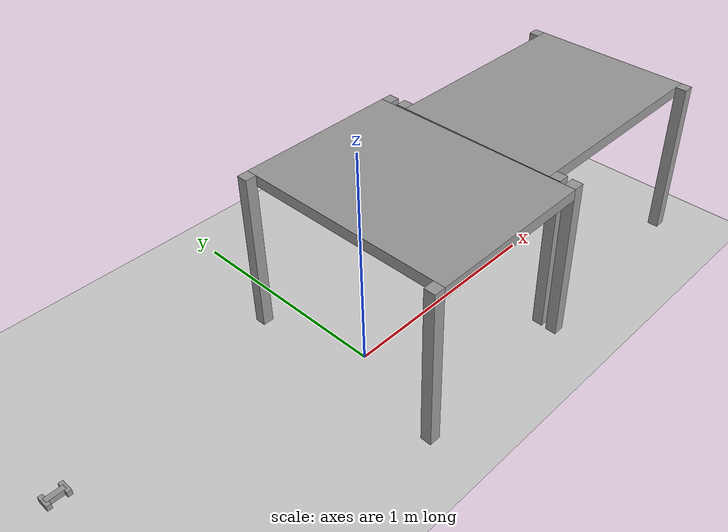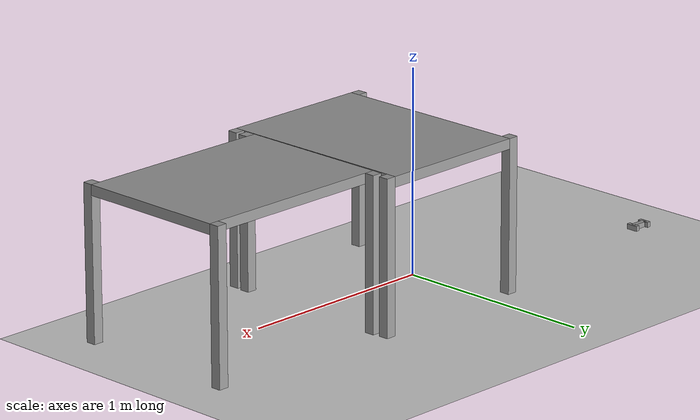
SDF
<sdf version="1.6">
 <world name="default">
  <model name="ground_plane">
   <pose>0 1 0 0 -0 0</pose>
   <static>1</static>
   <link name="link">
    <collision name="collision">
     <geometry><plane><normal>0 0 1</normal><size>100 100</size></plane></geometry>
     <surface>
      <contact><collide_bitmask>65535</collide_bitmask></contact>
      <friction><ode><mu>100</mu><mu2>50</mu2></ode></friction>
     </surface>
    </collision>
    <visual name="visual">
     <cast_shadows>0</cast_shadows>
     <geometry><plane><normal>0 0 1</normal><size>100 100</size></plane></geometry>
     <material>
      <script><uri>file://media/materials/scripts/gazebo.material</uri><name>Gazebo/Grey</name></script>
     </material>
    </visual>
   </link>
  </model>
  <model name="table">
   <link name="link_0">
    <inertial>
     <mass>1</mass>
     <inertia>
      <ixx>0.166667</ixx>
      <ixy>0</ixy>
      <ixz>0</ixz>
      <iyy>0.166667</iyy>
      <iyz>0</iyz>
      <izz>0.166667</izz>
     </inertia>
    </inertial>
    <visual name="visual">
     <geometry><box><size>0.75 1 0.05</size></box></geometry>
     <material>
      <lighting>1</lighting>
      <script><uri>file://media/materials/scripts/gazebo.material</uri><name>Gazebo/Grey</name></script>
      <shader type="vertex"><normal_map>__default__</normal_map></shader>
      <ambient>0.3 0.3 0.3 1</ambient>
      <diffuse>0.7 0.7 0.7 1</diffuse>
      <specular>0.01 0.01 0.01 1</specular>
      <emissive>0 0 0 1</emissive>
     </material>
    </visual>
    <collision name="collision">
     <geometry><box><size>0.75 1 0.05</size></box></geometry>
     <surface>
      <friction>
       <ode><mu>1</mu><mu2>1</mu2><fdir1>0 0 0</fdir1><slip1>0</slip1><slip2>0</slip2></ode>
       <torsional>
        <coefficient>1</coefficient>
        <patch_radius>0</patch_radius>
        <surface_radius>0</surface_radius>
        <use_patch_radius>1</use_patch_radius>
        <ode><slip>0</slip></ode>
       </torsional>
      </friction>
      <bounce><restitution_coefficient>0</restitution_coefficient><threshold>1e+06</threshold></bounce>
      <contact>
       <collide_without_contact>0</collide_without_contact>
       <collide_without_contact_bitmask>1</collide_without_contact_bitmask>
       <collide_bitmask>1</collide_bitmask>
       <ode>
        <soft_cfm>0</soft_cfm>
        <soft_erp>0.2</soft_erp>
        <kp>1e+13</kp>
        <kd>1</kd>
        <max_vel>0.01</max_vel>
        <min_depth>0</min_depth>
       </ode>
       <bullet>
        <split_impulse>1</split_impulse>
        <split_impulse_penetration_threshold>-0.01</split_impulse_penetration_threshold>
        <soft_cfm>0</soft_cfm>
        <soft_erp>0.2</soft_erp>
        <kp>1e+13</kp>
        <kd>1</kd>
       </bullet>
      </contact>
     </surface>
    </collision>
   </link>
   <link name="link_2_clone">
    <inertial>
     <mass>1</mass>
     <inertia>
      <ixx>0.166667</ixx>
      <ixy>0</ixy>
      <ixz>0</ixz>
      <iyy>0.166667</iyy>
      <iyz>0</iyz>
      <izz>0.166667</izz>
     </inertia>
    </inertial>
    <pose>-0.4 -0.475 -0.35 0 -0 0</pose>
    <visual name="visual">
     <geometry><box><size>0.05 0.05 0.75</size></box></geometry>
     <material>
      <lighting>1</lighting>
      <script><uri>file://media/materials/scripts/gazebo.material</uri><name>Gazebo/Grey</name></script>
      <shader type="vertex"><normal_map>__default__</normal_map></shader>
      <ambient>0.3 0.3 0.3 1</ambient>
      <diffuse>0.7 0.7 0.7 1</diffuse>
      <specular>0.01 0.01 0.01 1</specular>
      <emissive>0 0 0 1</emissive>
     </material>
    </visual>
    <collision name="collision">
     <geometry><box><size>0.05 0.05 0.75</size></box></geometry>
     <surface>
      <friction>
       <ode><mu>1</mu><mu2>1</mu2><fdir1>0 0 0</fdir1><slip1>0</slip1><slip2>0</slip2></ode>
       <torsional>
        <coefficient>1</coefficient>
        <patch_radius>0</patch_radius>
        <surface_radius>0</surface_radius>
        <use_patch_radius>1</use_patch_radius>
        <ode><slip>0</slip></ode>
       </torsional>
      </friction>
      <bounce><restitution_coefficient>0</restitution_coefficient><threshold>1e+06</threshold></bounce>
      <contact>
       <collide_without_contact>0</collide_without_contact>
       <collide_without_contact_bitmask>1</collide_without_contact_bitmask>
       <collide_bitmask>1</collide_bitmask>
       <ode>
        <soft_cfm>0</soft_cfm>
        <soft_erp>0.2</soft_erp>
        <kp>1e+13</kp>
        <kd>1</kd>
        <max_vel>0.01</max_vel>
        <min_depth>0</min_depth>
       </ode>
       <bullet>
        <split_impulse>1</split_impulse>
        <split_impulse_penetration_threshold>-0.01</split_impulse_penetration_threshold>
        <soft_cfm>0</soft_cfm>
        <soft_erp>0.2</soft_erp>
        <kp>1e+13</kp>
        <kd>1</kd>
       </bullet>
      </contact>
     </surface>
    </collision>
   </link>
   <link name="link_2_clone_0">
    <inertial>
     <mass>1</mass>
     <inertia>
      <ixx>0.166667</ixx>
      <ixy>0</ixy>
      <ixz>0</ixz>
      <iyy>0.166667</iyy>
      <iyz>0</iyz>
      <izz>0.166667</izz>
     </inertia>
    </inertial>
    <pose>0.4 -0.475 -0.35 0 -0 0</pose>
    <visual name="visual">
     <geometry><box><size>0.05 0.05 0.75</size></box></geometry>
     <material>
      <lighting>1</lighting>
      <script><uri>file://media/materials/scripts/gazebo.material</uri><name>Gazebo/Grey</name></script>
      <shader type="vertex"><normal_map>__default__</normal_map></shader>
      <ambient>0.3 0.3 0.3 1</ambient>
      <diffuse>0.7 0.7 0.7 1</diffuse>
      <specular>0.01 0.01 0.01 1</specular>
      <emissive>0 0 0 1</emissive>
     </material>
    </visual>
    <collision name="collision">
     <geometry><box><size>0.05 0.05 0.75</size></box></geometry>
     <surface>
      <friction>
       <ode><mu>1</mu><mu2>1</mu2><fdir1>0 0 0</fdir1><slip1>0</slip1><slip2>0</slip2></ode>
       <torsional>
        <coefficient>1</coefficient>
        <patch_radius>0</patch_radius>
        <surface_radius>0</surface_radius>
        <use_patch_radius>1</use_patch_radius>
        <ode><slip>0</slip></ode>
       </torsional>
      </friction>
      <bounce><restitution_coefficient>0</restitution_coefficient><threshold>1e+06</threshold></bounce>
      <contact>
       <collide_without_contact>0</collide_without_contact>
       <collide_without_contact_bitmask>1</collide_without_contact_bitmask>
       <collide_bitmask>1</collide_bitmask>
       <ode>
        <soft_cfm>0</soft_cfm>
        <soft_erp>0.2</soft_erp>
        <kp>1e+13</kp>
        <kd>1</kd>
        <max_vel>0.01</max_vel>
        <min_depth>0</min_depth>
       </ode>
       <bullet>
        <split_impulse>1</split_impulse>
        <split_impulse_penetration_threshold>-0.01</split_impulse_penetration_threshold>
        <soft_cfm>0</soft_cfm>
        <soft_erp>0.2</soft_erp>
        <kp>1e+13</kp>
        <kd>1</kd>
       </bullet>
      </contact>
     </surface>
    </collision>
   </link>
   <link name="link_2_clone_1">
    <inertial>
     <mass>1</mass>
     <inertia>
      <ixx>0.166667</ixx>
      <ixy>0</ixy>
      <ixz>0</ixz>
      <iyy>0.166667</iyy>
      <iyz>0</iyz>
      <izz>0.166667</izz>
     </inertia>
    </inertial>
    <pose>0.4 0.475 -0.35 0 -0 0</pose>
    <visual name="visual">
     <geometry><box><size>0.05 0.05 0.75</size></box></geometry>
     <material>
      <lighting>1</lighting>
      <script><uri>file://media/materials/scripts/gazebo.material</uri><name>Gazebo/Grey</name></script>
      <shader type="vertex"><normal_map>__default__</normal_map></shader>
      <ambient>0.3 0.3 0.3 1</ambient>
      <diffuse>0.7 0.7 0.7 1</diffuse>
      <specular>0.01 0.01 0.01 1</specular>
      <emissive>0 0 0 1</emissive>
     </material>
    </visual>
    <collision name="collision">
     <geometry><box><size>0.05 0.05 0.75</size></box></geometry>
     <surface>
      <friction>
       <ode><mu>1</mu><mu2>1</mu2><fdir1>0 0 0</fdir1><slip1>0</slip1><slip2>0</slip2></ode>
       <torsional>
        <coefficient>1</coefficient>
        <patch_radius>0</patch_radius>
        <surface_radius>0</surface_radius>
        <use_patch_radius>1</use_patch_radius>
        <ode><slip>0</slip></ode>
       </torsional>
      </friction>
      <bounce><restitution_coefficient>0</restitution_coefficient><threshold>1e+06</threshold></bounce>
      <contact>
       <collide_without_contact>0</collide_without_contact>
       <collide_without_contact_bitmask>1</collide_without_contact_bitmask>
       <collide_bitmask>1</collide_bitmask>
       <ode>
        <soft_cfm>0</soft_cfm>
        <soft_erp>0.2</soft_erp>
        <kp>1e+13</kp>
        <kd>1</kd>
        <max_vel>0.01</max_vel>
        <min_depth>0</min_depth>
       </ode>
       <bullet>
        <split_impulse>1</split_impulse>
        <split_impulse_penetration_threshold>-0.01</split_impulse_penetration_threshold>
        <soft_cfm>0</soft_cfm>
        <soft_erp>0.2</soft_erp>
        <kp>1e+13</kp>
        <kd>1</kd>
       </bullet>
      </contact>
     </surface>
    </collision>
   </link>
   <link name="link_2_clone_1_clone">
    <inertial>
     <mass>1</mass>
     <inertia>
      <ixx>0.166667</ixx>
      <ixy>0</ixy>
      <ixz>0</ixz>
      <iyy>0.166667</iyy>
      <iyz>0</iyz>
      <izz>0.166667</izz>
     </inertia>
    </inertial>
    <pose>-0.4 0.475 -0.35 0 -0 0</pose>
    <visual name="visual">
     <geometry><box><size>0.05 0.05 0.75</size></box></geometry>
     <material>
      <lighting>1</lighting>
      <script><uri>file://media/materials/scripts/gazebo.material</uri><name>Gazebo/Grey</name></script>
      <shader type="vertex"><normal_map>__default__</normal_map></shader>
      <ambient>0.3 0.3 0.3 1</ambient>
      <diffuse>0.7 0.7 0.7 1</diffuse>
      <specular>0.01 0.01 0.01 1</specular>
      <emissive>0 0 0 1</emissive>
     </material>
    </visual>
    <collision name="collision">
     <geometry><box><size>0.05 0.05 0.75</size></box></geometry>
     <surface>
      <friction>
       <ode><mu>1</mu><mu2>1</mu2><fdir1>0 0 0</fdir1><slip1>0</slip1><slip2>0</slip2></ode>
       <torsional>
        <coefficient>1</coefficient>
        <patch_radius>0</patch_radius>
        <surface_radius>0</surface_radius>
        <use_patch_radius>1</use_patch_radius>
        <ode><slip>0</slip></ode>
       </torsional>
      </friction>
      <bounce><restitution_coefficient>0</restitution_coefficient><threshold>1e+06</threshold></bounce>
      <contact>
       <collide_without_contact>0</collide_without_contact>
       <collide_without_contact_bitmask>1</collide_without_contact_bitmask>
       <collide_bitmask>1</collide_bitmask>
       <ode>
        <soft_cfm>0</soft_cfm>
        <soft_erp>0.2</soft_erp>
        <kp>1e+13</kp>
        <kd>1</kd>
        <max_vel>0.01</max_vel>
        <min_depth>0</min_depth>
       </ode>
       <bullet>
        <split_impulse>1</split_impulse>
        <split_impulse_penetration_threshold>-0.01</split_impulse_penetration_threshold>
        <soft_cfm>0</soft_cfm>
        <soft_erp>0.2</soft_erp>
        <kp>1e+13</kp>
        <kd>1</kd>
       </bullet>
      </contact>
     </surface>
    </collision>
   </link>
   <joint name="link_0_JOINT_2" type="fixed">
    <parent>link_0</parent>
    <child>link_2_clone</child>
    <physics>
     <ode><limit><cfm>0</cfm><erp>0.2</erp></limit><suspension><cfm>0</cfm><erp>0.2</erp></suspension></ode>
    </physics>
   </joint>
   <joint name="link_0_JOINT_3" type="fixed">
    <parent>link_0</parent>
    <child>link_2_clone_0</child>
    <physics>
     <ode><limit><cfm>0</cfm><erp>0.2</erp></limit><suspension><cfm>0</cfm><erp>0.2</erp></suspension></ode>
    </physics>
   </joint>
   <joint name="link_0_JOINT_4" type="fixed">
    <parent>link_0</parent>
    <child>link_2_clone_1</child>
    <physics>
     <ode><limit><cfm>0</cfm><erp>0.2</erp></limit><suspension><cfm>0</cfm><erp>0.2</erp></suspension></ode>
    </physics>
   </joint>
   <joint name="link_0_JOINT_6" type="fixed">
    <parent>link_0</parent>
    <child>link_2_clone_1_clone</child>
    <physics>
     <ode><limit><cfm>0</cfm><erp>0.2</erp></limit><suspension><cfm>0</cfm><erp>0.2</erp></suspension></ode>
    </physics>
   </joint>
   <static>1</static>
   <pose>0.268534 0.000932 0.724998 0 2e-06 0.005571</pose>
  </model>
  <model name="table_0">
   <link name="link_0">
    <inertial>
     <mass>1</mass>
     <inertia>
      <ixx>0.166667</ixx>
      <ixy>0</ixy>
      <ixz>0</ixz>
      <iyy>0.166667</iyy>
      <iyz>0</iyz>
      <izz>0.166667</izz>
     </inertia>
    </inertial>
    <visual name="visual">
     <geometry><box><size>0.75 1 0.05</size></box></geometry>
     <material>
      <lighting>1</lighting>
      <script><uri>file://media/materials/scripts/gazebo.material</uri><name>Gazebo/Grey</name></script>
      <shader type="vertex"><normal_map>__default__</normal_map></shader>
      <ambient>0.3 0.3 0.3 1</ambient>
      <diffuse>0.7 0.7 0.7 1</diffuse>
      <specular>0.01 0.01 0.01 1</specular>
      <emissive>0 0 0 1</emissive>
     </material>
    </visual>
    <collision name="collision">
     <geometry><box><size>0.75 1 0.05</size></box></geometry>
     <surface>
      <friction>
       <ode><mu>1</mu><mu2>1</mu2><fdir1>0 0 0</fdir1><slip1>0</slip1><slip2>0</slip2></ode>
       <torsional>
        <coefficient>1</coefficient>
        <patch_radius>0</patch_radius>
        <surface_radius>0</surface_radius>
        <use_patch_radius>1</use_patch_radius>
        <ode><slip>0</slip></ode>
       </torsional>
      </friction>
      <bounce><restitution_coefficient>0</restitution_coefficient><threshold>1e+06</threshold></bounce>
      <contact>
       <collide_without_contact>0</collide_without_contact>
       <collide_without_contact_bitmask>1</collide_without_contact_bitmask>
       <collide_bitmask>1</collide_bitmask>
       <ode>
        <soft_cfm>0</soft_cfm>
        <soft_erp>0.2</soft_erp>
        <kp>1e+13</kp>
        <kd>1</kd>
        <max_vel>0.01</max_vel>
        <min_depth>0</min_depth>
       </ode>
       <bullet>
        <split_impulse>1</split_impulse>
        <split_impulse_penetration_threshold>-0.01</split_impulse_penetration_threshold>
        <soft_cfm>0</soft_cfm>
        <soft_erp>0.2</soft_erp>
        <kp>1e+13</kp>
        <kd>1</kd>
       </bullet>
      </contact>
     </surface>
    </collision>
   </link>
   <link name="link_2_clone">
    <inertial>
     <mass>1</mass>
     <inertia>
      <ixx>0.166667</ixx>
      <ixy>0</ixy>
      <ixz>0</ixz>
      <iyy>0.166667</iyy>
      <iyz>0</iyz>
      <izz>0.166667</izz>
     </inertia>
    </inertial>
    <pose>-0.4 -0.475 -0.35 0 -0 0</pose>
    <visual name="visual">
     <geometry><box><size>0.05 0.05 0.75</size></box></geometry>
     <material>
      <lighting>1</lighting>
      <script><uri>file://media/materials/scripts/gazebo.material</uri><name>Gazebo/Grey</name></script>
      <shader type="vertex"><normal_map>__default__</normal_map></shader>
      <ambient>0.3 0.3 0.3 1</ambient>
      <diffuse>0.7 0.7 0.7 1</diffuse>
      <specular>0.01 0.01 0.01 1</specular>
      <emissive>0 0 0 1</emissive>
     </material>
    </visual>
    <collision name="collision">
     <geometry><box><size>0.05 0.05 0.75</size></box></geometry>
     <surface>
      <friction>
       <ode><mu>1</mu><mu2>1</mu2><fdir1>0 0 0</fdir1><slip1>0</slip1><slip2>0</slip2></ode>
       <torsional>
        <coefficient>1</coefficient>
        <patch_radius>0</patch_radius>
        <surface_radius>0</surface_radius>
        <use_patch_radius>1</use_patch_radius>
        <ode><slip>0</slip></ode>
       </torsional>
      </friction>
      <bounce><restitution_coefficient>0</restitution_coefficient><threshold>1e+06</threshold></bounce>
      <contact>
       <collide_without_contact>0</collide_without_contact>
       <collide_without_contact_bitmask>1</collide_without_contact_bitmask>
       <collide_bitmask>1</collide_bitmask>
       <ode>
        <soft_cfm>0</soft_cfm>
        <soft_erp>0.2</soft_erp>
        <kp>1e+13</kp>
        <kd>1</kd>
        <max_vel>0.01</max_vel>
        <min_depth>0</min_depth>
       </ode>
       <bullet>
        <split_impulse>1</split_impulse>
        <split_impulse_penetration_threshold>-0.01</split_impulse_penetration_threshold>
        <soft_cfm>0</soft_cfm>
        <soft_erp>0.2</soft_erp>
        <kp>1e+13</kp>
        <kd>1</kd>
       </bullet>
      </contact>
     </surface>
    </collision>
   </link>
   <link name="link_2_clone_0">
    <inertial>
     <mass>1</mass>
     <inertia>
      <ixx>0.166667</ixx>
      <ixy>0</ixy>
      <ixz>0</ixz>
      <iyy>0.166667</iyy>
      <iyz>0</iyz>
      <izz>0.166667</izz>
     </inertia>
    </inertial>
    <pose>0.4 -0.475 -0.35 0 -0 0</pose>
    <visual name="visual">
     <geometry><box><size>0.05 0.05 0.75</size></box></geometry>
     <material>
      <lighting>1</lighting>
      <script><uri>file://media/materials/scripts/gazebo.material</uri><name>Gazebo/Grey</name></script>
      <shader type="vertex"><normal_map>__default__</normal_map></shader>
      <ambient>0.3 0.3 0.3 1</ambient>
      <diffuse>0.7 0.7 0.7 1</diffuse>
      <specular>0.01 0.01 0.01 1</specular>
      <emissive>0 0 0 1</emissive>
     </material>
    </visual>
    <collision name="collision">
     <geometry><box><size>0.05 0.05 0.75</size></box></geometry>
     <surface>
      <friction>
       <ode><mu>1</mu><mu2>1</mu2><fdir1>0 0 0</fdir1><slip1>0</slip1><slip2>0</slip2></ode>
       <torsional>
        <coefficient>1</coefficient>
        <patch_radius>0</patch_radius>
        <surface_radius>0</surface_radius>
        <use_patch_radius>1</use_patch_radius>
        <ode><slip>0</slip></ode>
       </torsional>
      </friction>
      <bounce><restitution_coefficient>0</restitution_coefficient><threshold>1e+06</threshold></bounce>
      <contact>
       <collide_without_contact>0</collide_without_contact>
       <collide_without_contact_bitmask>1</collide_without_contact_bitmask>
       <collide_bitmask>1</collide_bitmask>
       <ode>
        <soft_cfm>0</soft_cfm>
        <soft_erp>0.2</soft_erp>
        <kp>1e+13</kp>
        <kd>1</kd>
        <max_vel>0.01</max_vel>
        <min_depth>0</min_depth>
       </ode>
       <bullet>
        <split_impulse>1</split_impulse>
        <split_impulse_penetration_threshold>-0.01</split_impulse_penetration_threshold>
        <soft_cfm>0</soft_cfm>
        <soft_erp>0.2</soft_erp>
        <kp>1e+13</kp>
        <kd>1</kd>
       </bullet>
      </contact>
     </surface>
    </collision>
   </link>
   <link name="link_2_clone_1">
    <inertial>
     <mass>1</mass>
     <inertia>
      <ixx>0.166667</ixx>
      <ixy>0</ixy>
      <ixz>0</ixz>
      <iyy>0.166667</iyy>
      <iyz>0</iyz>
      <izz>0.166667</izz>
     </inertia>
    </inertial>
    <pose>0.4 0.475 -0.35 0 -0 0</pose>
    <visual name="visual">
     <geometry><box><size>0.05 0.05 0.75</size></box></geometry>
     <material>
      <lighting>1</lighting>
      <script><uri>file://media/materials/scripts/gazebo.material</uri><name>Gazebo/Grey</name></script>
      <shader type="vertex"><normal_map>__default__</normal_map></shader>
      <ambient>0.3 0.3 0.3 1</ambient>
      <diffuse>0.7 0.7 0.7 1</diffuse>
      <specular>0.01 0.01 0.01 1</specular>
      <emissive>0 0 0 1</emissive>
     </material>
    </visual>
    <collision name="collision">
     <geometry><box><size>0.05 0.05 0.75</size></box></geometry>
     <surface>
      <friction>
       <ode><mu>1</mu><mu2>1</mu2><fdir1>0 0 0</fdir1><slip1>0</slip1><slip2>0</slip2></ode>
       <torsional>
        <coefficient>1</coefficient>
        <patch_radius>0</patch_radius>
        <surface_radius>0</surface_radius>
        <use_patch_radius>1</use_patch_radius>
        <ode><slip>0</slip></ode>
       </torsional>
      </friction>
      <bounce><restitution_coefficient>0</restitution_coefficient><threshold>1e+06</threshold></bounce>
      <contact>
       <collide_without_contact>0</collide_without_contact>
       <collide_without_contact_bitmask>1</collide_without_contact_bitmask>
       <collide_bitmask>1</collide_bitmask>
       <ode>
        <soft_cfm>0</soft_cfm>
        <soft_erp>0.2</soft_erp>
        <kp>1e+13</kp>
        <kd>1</kd>
        <max_vel>0.01</max_vel>
        <min_depth>0</min_depth>
       </ode>
       <bullet>
        <split_impulse>1</split_impulse>
        <split_impulse_penetration_threshold>-0.01</split_impulse_penetration_threshold>
        <soft_cfm>0</soft_cfm>
        <soft_erp>0.2</soft_erp>
        <kp>1e+13</kp>
        <kd>1</kd>
       </bullet>
      </contact>
     </surface>
    </collision>
   </link>
   <link name="link_2_clone_1_clone">
    <inertial>
     <mass>1</mass>
     <inertia>
      <ixx>0.166667</ixx>
      <ixy>0</ixy>
      <ixz>0</ixz>
      <iyy>0.166667</iyy>
      <iyz>0</iyz>
      <izz>0.166667</izz>
     </inertia>
    </inertial>
    <pose>-0.4 0.475 -0.35 0 -0 0</pose>
    <visual name="visual">
     <geometry><box><size>0.05 0.05 0.75</size></box></geometry>
     <material>
      <lighting>1</lighting>
      <script><uri>file://media/materials/scripts/gazebo.material</uri><name>Gazebo/Grey</name></script>
      <shader type="vertex"><normal_map>__default__</normal_map></shader>
      <ambient>0.3 0.3 0.3 1</ambient>
      <diffuse>0.7 0.7 0.7 1</diffuse>
      <specular>0.01 0.01 0.01 1</specular>
      <emissive>0 0 0 1</emissive>
     </material>
    </visual>
    <collision name="collision">
     <geometry><box><size>0.05 0.05 0.75</size></box></geometry>
     <surface>
      <friction>
       <ode><mu>1</mu><mu2>1</mu2><fdir1>0 0 0</fdir1><slip1>0</slip1><slip2>0</slip2></ode>
       <torsional>
        <coefficient>1</coefficient>
        <patch_radius>0</patch_radius>
        <surface_radius>0</surface_radius>
        <use_patch_radius>1</use_patch_radius>
        <ode><slip>0</slip></ode>
       </torsional>
      </friction>
      <bounce><restitution_coefficient>0</restitution_coefficient><threshold>1e+06</threshold></bounce>
      <contact>
       <collide_without_contact>0</collide_without_contact>
       <collide_without_contact_bitmask>1</collide_without_contact_bitmask>
       <collide_bitmask>1</collide_bitmask>
       <ode>
        <soft_cfm>0</soft_cfm>
        <soft_erp>0.2</soft_erp>
        <kp>1e+13</kp>
        <kd>1</kd>
        <max_vel>0.01</max_vel>
        <min_depth>0</min_depth>
       </ode>
       <bullet>
        <split_impulse>1</split_impulse>
        <split_impulse_penetration_threshold>-0.01</split_impulse_penetration_threshold>
        <soft_cfm>0</soft_cfm>
        <soft_erp>0.2</soft_erp>
        <kp>1e+13</kp>
        <kd>1</kd>
       </bullet>
      </contact>
     </surface>
    </collision>
   </link>
   <joint name="link_0_JOINT_2" type="fixed">
    <parent>link_0</parent>
    <child>link_2_clone</child>
    <physics>
     <ode><limit><cfm>0</cfm><erp>0.2</erp></limit><suspension><cfm>0</cfm><erp>0.2</erp></suspension></ode>
    </physics>
   </joint>
   <joint name="link_0_JOINT_3" type="fixed">
    <parent>link_0</parent>
    <child>link_2_clone_0</child>
    <physics>
     <ode><limit><cfm>0</cfm><erp>0.2</erp></limit><suspension><cfm>0</cfm><erp>0.2</erp></suspension></ode>
    </physics>
   </joint>
   <joint name="link_0_JOINT_4" type="fixed">
    <parent>link_0</parent>
    <child>link_2_clone_1</child>
    <physics>
     <ode><limit><cfm>0</cfm><erp>0.2</erp></limit><suspension><cfm>0</cfm><erp>0.2</erp></suspension></ode>
    </physics>
   </joint>
   <joint name="link_0_JOINT_6" type="fixed">
    <parent>link_0</parent>
    <child>link_2_clone_1_clone</child>
    <physics>
     <ode><limit><cfm>0</cfm><erp>0.2</erp></limit><suspension><cfm>0</cfm><erp>0.2</erp></suspension></ode>
    </physics>
   </joint>
   <static>1</static>
   <pose>1.14971 -1e-06 0.724999 0 -0 1.5708</pose>
  </model>
  <model name="I_shape">
   <link name="link">
    <inertial>
     <mass>0.15</mass>
     <inertia><ixx>0.0002</ixx><ixy>0</ixy><ixz>0</ixz><iyy>0.0002</iyy><iyz>0</iyz><izz>0.0004</izz></inertia>
    </inertial>
    <visual name="web_vis">
     <geometry><box><size>0.08 0.025 0.025</size></box></geometry>
     <material><script><name>Gazebo/Grey</name><uri>__default__</uri></script></material>
    </visual>
    <collision name="web_col">
     <geometry><box><size>0.08 0.025 0.025</size></box></geometry>
     <surface><friction><ode><mu>100</mu><mu2>100</mu2></ode></friction></surface>
    </collision>
    <visual name="left_vis">
     <pose>-0.04 0 0 0 -0 0</pose>
     <geometry><box><size>0.02 0.06 0.025</size></box></geometry>
     <material><script><name>Gazebo/Grey</name><uri>__default__</uri></script></material>
    </visual>
    <collision name="left_col">
     <pose>-0.04 0 0 0 -0 0</pose>
     <geometry><box><size>0.02 0.06 0.025</size></box></geometry>
     <surface><friction><ode><mu>100</mu><mu2>100</mu2></ode></friction></surface>
    </collision>
    <visual name="right_vis">
     <pose>0.04 0 0 0 -0 0</pose>
     <geometry><box><size>0.02 0.06 0.025</size></box></geometry>
     <material><script><name>Gazebo/Grey</name><uri>__default__</uri></script></material>
    </visual>
    <collision name="right_col">
     <pose>0.04 0 0 0 -0 0</pose>
     <geometry><box><size>0.02 0.06 0.025</size></box></geometry>
     <surface><friction><ode><mu>100</mu><mu2>100</mu2></ode></friction></surface>
    </collision>
   </link>
   <pose>-1.22844 0.311081 0.0125 0 0 -8e-06</pose>
  </model>
 </world>
</sdf>
